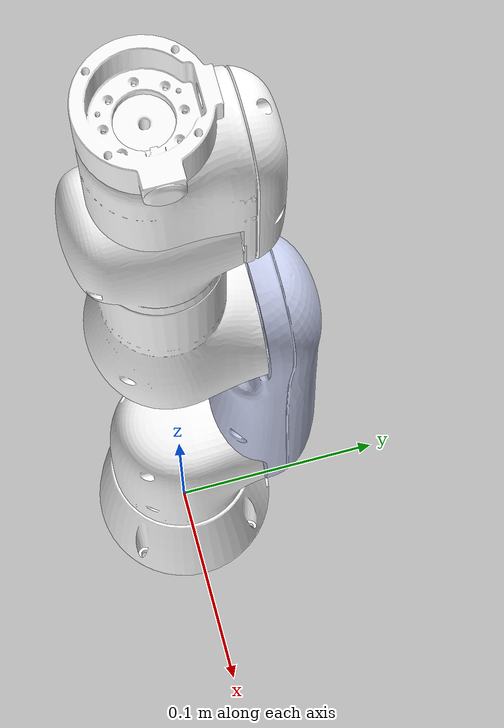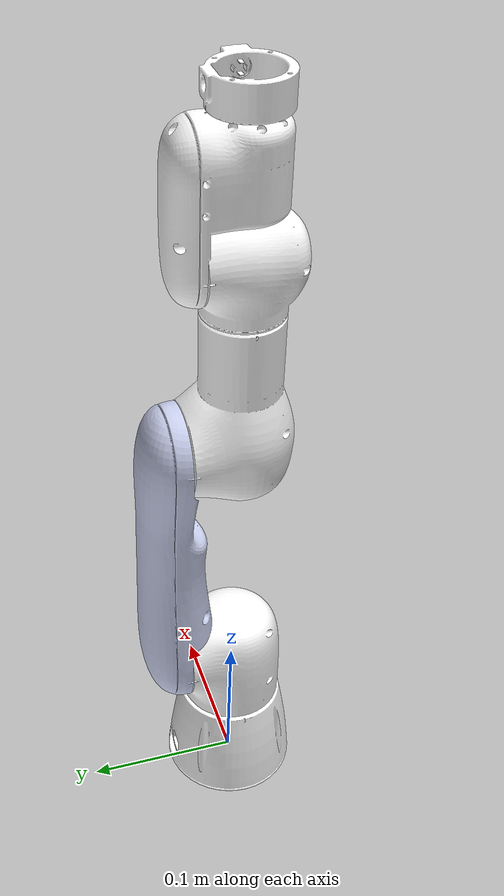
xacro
<?xml version="1.0"?>
<robot xmlns:xacro="http://www.ros.org/wiki/xacro" name="arm380">
    <xacro:arg name="initial_positions_file" default="initial_positions.yaml" />

    <!-- Import arm380 urdf file -->
    <xacro:include filename="$(find robot_description)/urdf/arm380.urdf" />

    <!-- Import control_xacro -->
    <xacro:include filename="arm380.ros2_control.xacro" />

    <xacro:arm380_ros2_control name="FakeSystem" initial_positions_file="$(arg initial_positions_file)"/>

</robot>

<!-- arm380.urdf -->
<robot name="arm380">

  <link name="base_link">
    <visual>
      <origin xyz="0 0 0" rpy="0 0 0" />
      <geometry>
        <mesh filename="package://robot_description/meshes/arm380/base_link.STL" />
      </geometry>
      <material name="">
        <color rgba="1 1 1 1" />
      </material>
    </visual>
    <collision>
      <origin xyz="0 0 0" rpy="0 0 0" />
      <geometry>
        <mesh filename="package://robot_description/meshes/arm380/base_link.STL" />
      </geometry>
    </collision>
    <inertial>
      <origin xyz="-8.45966691214841E-08 -0.00155647917777516 0.0342637301024087" rpy="0 0 0" />
      <mass value="0.239168935948052" />
      <inertia
        ixx="0.000178388289470626"
        ixy="-4.61838685418239E-08"
        ixz="2.91248649387554E-08"
        iyy="0.000188827699788914"
        iyz="-5.92308710944228E-06"
        izz="0.000222529456446662" />
    </inertial>
  </link>

  <link name="Link1">
    <visual>
      <origin xyz="0 0 0" rpy="0 0 0" />
      <geometry>
        <mesh filename="package://robot_description/meshes/arm380/Link1.STL" />
      </geometry>
      <material name="">
        <color rgba="1 1 1 1" />
      </material>
    </visual>
    <collision>
      <origin xyz="0 0 0" rpy="0 0 0" />
      <geometry>
        <mesh filename="package://robot_description/meshes/arm380/Link1.STL" />
      </geometry>
    </collision>
    <inertial>
      <origin xyz="-0.000162164450388651 0.00917047689216971 0.0389740940033837" rpy="0 0 0" />
      <mass value="0.126658594854093" />
      <inertia
        ixx="6.79996673861983E-05"
        ixy="-4.87105811162039E-08"
        ixz="-4.26467790658147E-08"
        iyy="8.11927087870196E-05"
        iyz="-3.28027008835361E-06"
        izz="6.7801345702838E-05" />
    </inertial>
  </link>

  <link name="Link2">
    <visual>
      <origin xyz="0 0 0" rpy="0 0 0" />
      <geometry>
        <mesh filename="package://robot_description/meshes/arm380/Link2.STL" />
      </geometry>
      <material name="">
        <color rgba="0.792156862745098 0.819607843137255 0.933333333333333 1" />
      </material>
    </visual>
    <collision>
      <origin xyz="0 0 0" rpy="0 0 0" />
      <geometry>
        <mesh filename="package://robot_description/meshes/arm380/Link2.STL" />
      </geometry>
    </collision>
    <inertial>
      <origin xyz="1.53729011855924E-05 0.0306353629749071 0.1214226214871" rpy="0 0 0" />
      <mass value="0.160117926518548" />
      <inertia
        ixx="0.000405769004136248"
        ixy="-2.72160418191171E-08"
        ixz="1.5809428814171E-07"
        iyy="0.000427558530199614"
        iyz="-3.91657445519094E-06"
        izz="5.37438489585082E-05" />
    </inertial>
  </link>

  <link name="Link3">
    <visual>
      <origin xyz="0 0 0" rpy="0 0 0" />
      <geometry>
        <mesh filename="package://robot_description/meshes/arm380/Link3.STL" />
      </geometry>
      <material name="">
        <color rgba="1 1 1 1" />
      </material>
    </visual>
    <collision>
      <origin xyz="0 0 0" rpy="0 0 0" />
      <geometry>
        <mesh filename="package://robot_description/meshes/arm380/Link3.STL" />
      </geometry>
    </collision>
    <inertial>
      <origin xyz="-9.78329976952861E-06 0.00329751593660976 0.0314462978757887" rpy="0 0 0" />
      <mass value="0.127031840994737" />
      <inertia
        ixx="7.33505785300731E-05"
        ixy="-6.00024592372626E-09"
        ixz="-3.1447388035994E-08"
        iyy="8.79087854697792E-05"
        iyz="2.50409400693757E-06"
        izz="6.44531281833318E-05" />
    </inertial>
  </link>

  <link name="Link4">
    <visual>
      <origin xyz="0 0 0" rpy="0 0 0" />
      <geometry>
        <mesh filename="package://robot_description/meshes/arm380/Link4.STL" />
      </geometry>
      <material name="">
        <color rgba="1 1 1 1" />
      </material>
    </visual>
    <collision>
      <origin xyz="0 0 0" rpy="0 0 0" />
      <geometry>
        <mesh filename="package://robot_description/meshes/arm380/Link4.STL" />
      </geometry>
    </collision>
    <inertial>
      <origin xyz="1.55531980251399E-05 0.00255449571402962 0.0217114896587859" rpy="0 0 0" />
      <mass value="0.0643122144006669" />
      <inertia
        ixx="2.40388680924498E-05"
        ixy="-2.67332465659579E-08"
        ixz="2.52373513835164E-09"
        iyy="2.40963972005928E-05"
        iyz="-3.10170706823566E-07"
        izz="2.71757225881803E-05" />
    </inertial>
  </link>

  <link name="Link5">
    <visual>
      <origin xyz="0 0 0" rpy="0 0 0" />
      <geometry>
        <mesh filename="package://robot_description/meshes/arm380/Link5.STL" />
      </geometry>
      <material name="">
        <color rgba="1 1 1 1" />
      </material>
    </visual>
    <collision>
      <origin xyz="0 0 0" rpy="0 0 0" />
      <geometry>
        <mesh filename="package://robot_description/meshes/arm380/Link5.STL" />
      </geometry>
    </collision>
    <inertial>
      <origin xyz="-9.45194566079898E-06 0.0143895941395145 0.0478798134472525" rpy="0 0 0" />
      <mass value="0.0749072920283932" />
      <inertia
        ixx="4.90960442597514E-05"
        ixy="6.32916513768678E-09"
        ixz="4.38441934313694E-08"
        iyy="5.08411188953791E-05"
        iyz="5.97145611574681E-06"
        izz="2.2770445675749E-05" />
    </inertial>
  </link>

  <link name="Link6">
    <visual>
      <origin xyz="0 0 0" rpy="0 0 0" />
      <geometry>
        <mesh filename="package://robot_description/meshes/arm380/Link6.STL" />
      </geometry>
      <material name="">
        <color rgba="1 1 1 1" />
      </material>
    </visual>
    <collision>
      <origin xyz="0 0 0" rpy="0 0 0" />
      <geometry>
        <mesh filename="package://robot_description/meshes/arm380/Link6.STL" />
      </geometry>
    </collision>
    <inertial>
      <origin xyz="0.00233595515129295 -0.000272972686685385 0.00432290542703301" rpy="0 0 0" />
      <mass value="0.0147843006339284" />
      <inertia
        ixx="3.01704467102817E-06"
        ixy="-1.40902271817962E-09"
        ixz="-1.83067869116528E-08"
        iyy="3.17721110124103E-06"
        iyz="1.40067560416999E-08"
        izz="5.32692092118558E-06" />
    </inertial>
  </link>
  <link name="world"/>
  <joint name="base_joint" type="fixed">
      <parent link="world"/>
      <child link="base_link"/>
      <origin xyz="0 0 0" rpy="0 0 0" />
      <axis xyz="0 0 1" />
  </joint>

  <joint name="joint1" type="revolute">
    <origin xyz="0.000159911339861453 0 0.0690000000532987" rpy="0 0 0" />
    <parent link="base_link" />
    <child link="Link1" />
    <axis xyz="0 0 1" />
    <limit lower="-2.9670" upper="2.9670" effort="9" velocity="3.14" />
  </joint>

  <joint name="joint2" type="revolute">
    <origin xyz="-0.000159912204403003 0 0.0420000000395224" rpy="0 0 0" />
    <parent link="Link1" />
    <child link="Link2" />
    <axis xyz="0 -0.999999999999993 0" />
    <limit lower="-1.6232" upper="1.6232" effort="9" velocity="3.14" />
  </joint>

  <joint name="joint3" type="revolute">
    <origin xyz="0 0 0.174999999999518" rpy="0 0 0" />
    <parent link="Link2" />
    <child link="Link3" />
    <axis xyz="0 1 0" />
    <limit lower="-2.6704" upper="2.6704" effort="9" velocity="3.14" />
  </joint>

  <joint name="joint4" type="revolute">
    <origin xyz="0 0 0.093999999906747" rpy="0 -3.44811666922302E-05 0" />
    <parent link="Link3" />
    <child link="Link4" />
    <axis xyz="3.44731977919239E-05 0 0.999999999375432" />
    <limit lower="-2.7576" upper="2.7576" effort="3.3" velocity="3.14" />
  </joint>

  <joint name="joint5" type="revolute">
    <origin xyz="0 0 0.0264600000166236" rpy="0 3.44811666961226E-05 0" />
    <parent link="Link4" />
    <child link="Link5" />
    <axis xyz="0 1 0" />
    <limit lower="-1.5359" upper="1.5359" effort="3.3" velocity="3.14" />
  </joint>

  <joint name="joint6" type="revolute">
    <origin xyz="0 0 0.0870000000029356" rpy="0 -3.44811666961239E-05 0" />
    <parent link="Link5" />
    <child link="Link6" />
    <axis xyz="0 0 1" />
    <limit lower="-2.9670" upper="2.9670" effort="3.3" velocity="3.14" />
  </joint>

</robot>
